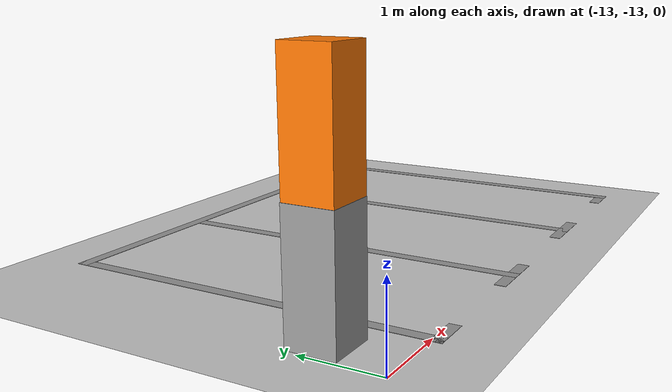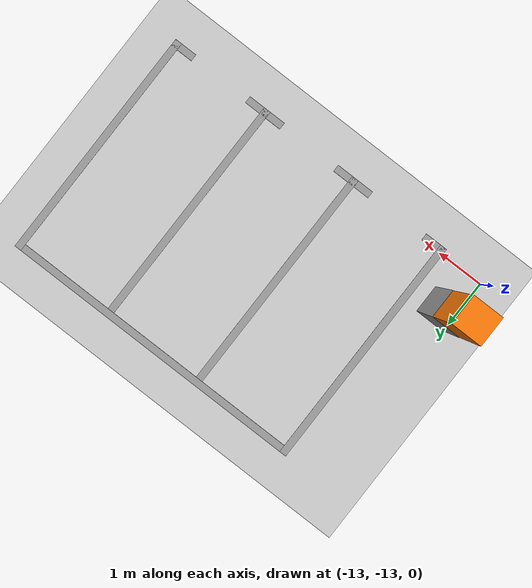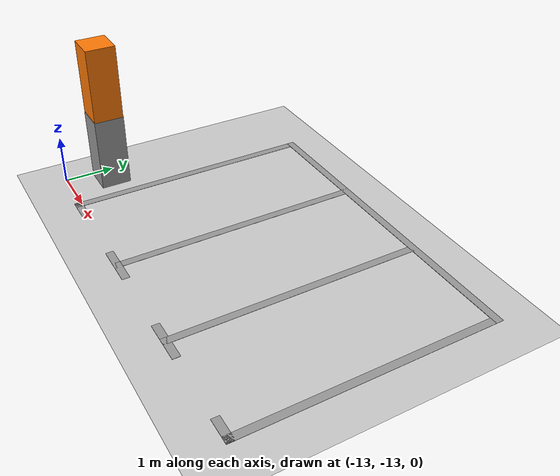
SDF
<sdf version="1.7">
 <world name="default">
  <model name="ground_plane">
   <static>1</static>
   <link name="link">
    <collision name="collision">
     <geometry><plane><normal>0 0 1</normal><size>100 100</size></plane></geometry>
     <surface><friction><ode><mu>100</mu><mu2>50</mu2></ode></friction></surface>
    </collision>
    <visual name="visual">
     <cast_shadows>0</cast_shadows>
     <geometry><plane><normal>0 0 1</normal><size>100 100</size></plane></geometry>
     <material>
      <script><uri>file://media/materials/scripts/gazebo.material</uri><name>Gazebo/Grey</name></script>
     </material>
    </visual>
   </link>
  </model>
  <model name="carport1_3_clone_clone_2">
   <pose>-9.17943 -8.8499 0 0 -0 0</pose>
   <link name="Wall_105">
    <collision name="Wall_105_Collision">
     <geometry><box><size>0.61 0.6 1.5</size></box></geometry>
     <pose>0 0 0.75 0 -0 0</pose>
    </collision>
    <visual name="Wall_105_Visual">
     <pose>0 0 0.75 0 -0 0</pose>
     <geometry><box><size>0.61 0.6 1.5</size></box></geometry>
     <material>
      <script><uri>file://media/materials/scripts/gazebo.material</uri><name>Gazebo/Grey</name></script>
      <ambient>1 1 1 1</ambient>
     </material>
     <meta><layer>0</layer></meta>
    </visual>
    <pose>-3.47407 -3.2865 0 0 -0 0</pose>
   </link>
   <link name="Wall_116">
    <collision name="Wall_116_Collision">
     <geometry><box><size>5.1 0.15 0.005</size></box></geometry>
     <pose>0 0 0.0025 0 -0 0</pose>
    </collision>
    <visual name="Wall_116_Visual">
     <pose>0 0 0.0025 0 -0 0</pose>
     <geometry><box><size>5.1 0.15 0.005</size></box></geometry>
     <material>
      <script><uri>file://media/materials/scripts/gazebo.material</uri><name>Gazebo/Grey</name></script>
      <ambient>1 1 1 1</ambient>
     </material>
     <meta><layer>0</layer></meta>
    </visual>
    <pose>-2.82307 -1.7385 0 0 -0 1.5708</pose>
   </link>
   <link name="Wall_124">
    <collision name="Wall_124_Collision">
     <geometry><box><size>5.1 0.15 0.005</size></box></geometry>
     <pose>0 0 0.0025 0 -0 0</pose>
    </collision>
    <visual name="Wall_124_Visual">
     <pose>0 0 0.0025 0 -0 0</pose>
     <geometry><box><size>5.1 0.15 0.005</size></box></geometry>
     <material>
      <script><uri>file://media/materials/scripts/gazebo.material</uri><name>Gazebo/Grey</name></script>
      <ambient>1 1 1 1</ambient>
     </material>
     <meta><layer>0</layer></meta>
    </visual>
    <pose>3.70393 -1.7305 0 0 -0 1.5708</pose>
   </link>
   <link name="Wall_146">
    <collision name="Wall_146_Collision">
     <geometry><box><size>6.67711 0.15 0.005</size></box></geometry>
     <pose>0 0 0.0025 0 -0 0</pose>
    </collision>
    <visual name="Wall_146_Visual">
     <pose>0 0 0.0025 0 -0 0</pose>
     <geometry><box><size>6.67711 0.15 0.005</size></box></geometry>
     <material>
      <script><uri>file://media/materials/scripts/gazebo.material</uri><name>Gazebo/Grey</name></script>
      <ambient>1 1 1 1</ambient>
     </material>
     <meta><layer>0</layer></meta>
    </visual>
    <pose>0.440428 0.7405 0 0 -0 0.001226</pose>
   </link>
   <link name="Wall_168">
    <collision name="Wall_168_Collision">
     <geometry><box><size>5.1 0.15 0.005</size></box></geometry>
     <pose>0 0 0.0025 0 -0 0</pose>
    </collision>
    <visual name="Wall_168_Visual">
     <pose>0 0 0.0025 0 -0 0</pose>
     <geometry><box><size>5.1 0.15 0.005</size></box></geometry>
     <material>
      <script><uri>file://media/materials/scripts/gazebo.material</uri><name>Gazebo/Grey</name></script>
      <ambient>1 1 1 1</ambient>
     </material>
     <meta><layer>0</layer></meta>
    </visual>
    <pose>-0.64827 -1.73839 0 0 -0 1.57088</pose>
   </link>
   <link name="Wall_173">
    <collision name="Wall_173_Collision">
     <geometry><box><size>5.1 0.15 0.005</size></box></geometry>
     <pose>0 0 0.0025 0 -0 0</pose>
    </collision>
    <visual name="Wall_173_Visual">
     <pose>0 0 0.0025 0 -0 0</pose>
     <geometry><box><size>5.1 0.15 0.005</size></box></geometry>
     <material>
      <script><uri>file://media/materials/scripts/gazebo.material</uri><name>Gazebo/Grey</name></script>
      <ambient>1 1 1 1</ambient>
     </material>
     <meta><layer>0</layer></meta>
    </visual>
    <pose>1.52673 -1.73839 0 0 -0 1.57088</pose>
   </link>
   <link name="Wall_177">
    <collision name="Wall_177_Collision">
     <geometry><box><size>0.6 0.59 3</size></box></geometry>
     <pose>0 0 1.5 0 -0 0</pose>
    </collision>
    <visual name="Wall_177_Visual">
     <pose>0 0 1.5 0 -0 0</pose>
     <geometry><box><size>0.6 0.59 3</size></box></geometry>
     <material>
      <script><uri>file://media/materials/scripts/gazebo.material</uri><name>Gazebo/Grey</name></script>
      <ambient>0.996078 0.47451 0.0196078 1</ambient>
     </material>
     <meta><layer>0</layer></meta>
    </visual>
    <pose>-3.47407 -3.2865 0 0 -0 0</pose>
   </link>
   <link name="Wall_179">
    <collision name="Wall_179_Collision">
     <geometry><box><size>0.5 0.15 0.005</size></box></geometry>
     <pose>0 0 0.0025 0 -0 0</pose>
    </collision>
    <visual name="Wall_179_Visual">
     <pose>0 0 0.0025 0 -0 0</pose>
     <geometry><box><size>0.5 0.15 0.005</size></box></geometry>
     <material>
      <script><uri>file://media/materials/scripts/gazebo.material</uri><name>Gazebo/Grey</name></script>
      <ambient>1 1 1 1</ambient>
     </material>
     <meta><layer>0</layer></meta>
    </visual>
    <pose>-2.64807 -4.2135 0 0 -0 0</pose>
   </link>
   <link name="Wall_181">
    <collision name="Wall_181_Collision">
     <geometry><box><size>0.5 0.15 0.005</size></box></geometry>
     <pose>0 0 0.0025 0 -0 0</pose>
    </collision>
    <visual name="Wall_181_Visual">
     <pose>0 0 0.0025 0 -0 0</pose>
     <geometry><box><size>0.5 0.15 0.005</size></box></geometry>
     <material>
      <script><uri>file://media/materials/scripts/gazebo.material</uri><name>Gazebo/Grey</name></script>
      <ambient>1 1 1 1</ambient>
     </material>
     <meta><layer>0</layer></meta>
    </visual>
    <pose>-0.823072 -4.2135 0 0 -0 3.14159</pose>
   </link>
   <link name="Wall_183">
    <collision name="Wall_183_Collision">
     <geometry><box><size>0.5 0.15 0.005</size></box></geometry>
     <pose>0 0 0.0025 0 -0 0</pose>
    </collision>
    <visual name="Wall_183_Visual">
     <pose>0 0 0.0025 0 -0 0</pose>
     <geometry><box><size>0.5 0.15 0.005</size></box></geometry>
     <material>
      <script><uri>file://media/materials/scripts/gazebo.material</uri><name>Gazebo/Grey</name></script>
      <ambient>1 1 1 1</ambient>
     </material>
     <meta><layer>0</layer></meta>
    </visual>
    <pose>-0.473072 -4.2135 0 0 -0 0</pose>
   </link>
   <link name="Wall_185">
    <collision name="Wall_185_Collision">
     <geometry><box><size>0.5 0.15 0.005</size></box></geometry>
     <pose>0 0 0.0025 0 -0 0</pose>
    </collision>
    <visual name="Wall_185_Visual">
     <pose>0 0 0.0025 0 -0 0</pose>
     <geometry><box><size>0.5 0.15 0.005</size></box></geometry>
     <material>
      <script><uri>file://media/materials/scripts/gazebo.material</uri><name>Gazebo/Grey</name></script>
      <ambient>1 1 1 1</ambient>
     </material>
     <meta><layer>0</layer></meta>
    </visual>
    <pose>1.35193 -4.2135 0 0 -0 3.14159</pose>
   </link>
   <link name="Wall_187">
    <collision name="Wall_187_Collision">
     <geometry><box><size>0.5 0.15 0.005</size></box></geometry>
     <pose>0 0 0.0025 0 -0 0</pose>
    </collision>
    <visual name="Wall_187_Visual">
     <pose>0 0 0.0025 0 -0 0</pose>
     <geometry><box><size>0.5 0.15 0.005</size></box></geometry>
     <material>
      <script><uri>file://media/materials/scripts/gazebo.material</uri><name>Gazebo/Grey</name></script>
      <ambient>1 1 1 1</ambient>
     </material>
     <meta><layer>0</layer></meta>
    </visual>
    <pose>1.70193 -4.2135 0 0 -0 0</pose>
   </link>
   <link name="Wall_189">
    <collision name="Wall_189_Collision">
     <geometry><box><size>0.5 0.15 0.005</size></box></geometry>
     <pose>0 0 0.0025 0 -0 0</pose>
    </collision>
    <visual name="Wall_189_Visual">
     <pose>0 0 0.0025 0 -0 0</pose>
     <geometry><box><size>0.5 0.15 0.005</size></box></geometry>
     <material>
      <script><uri>file://media/materials/scripts/gazebo.material</uri><name>Gazebo/Grey</name></script>
      <ambient>1 1 1 1</ambient>
     </material>
     <meta><layer>0</layer></meta>
    </visual>
    <pose>3.52893 -4.2055 0 0 -0 3.14159</pose>
   </link>
   <static>1</static>
  </model>
 </world>
</sdf>
